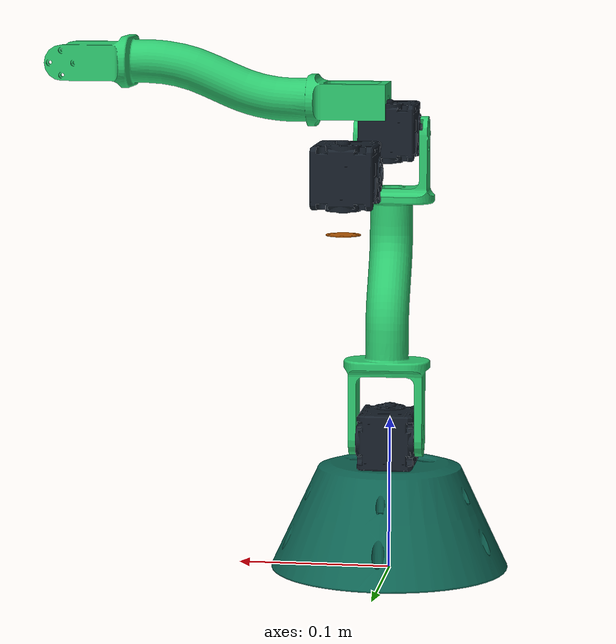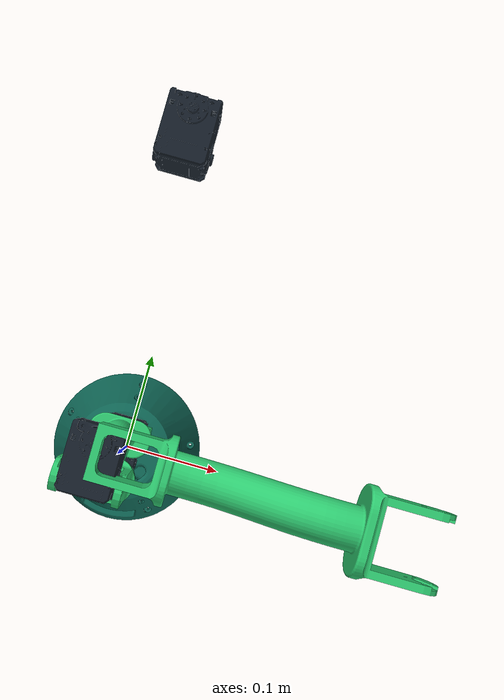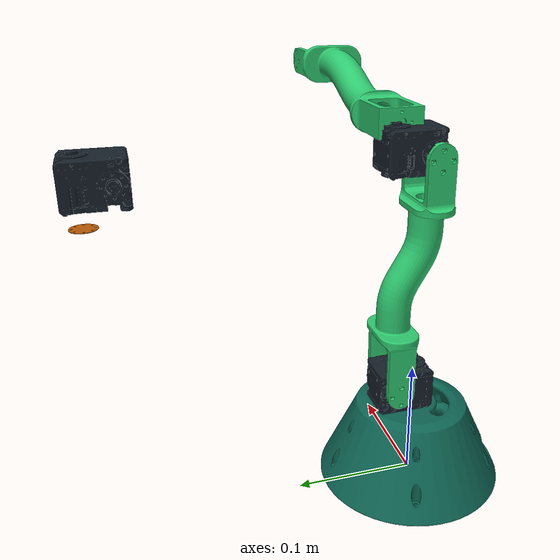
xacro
<?xml version="1.0"?>
<robot xmlns:xacro="http://wiki.ros.org/xacro">

  <!-- Fix robot to Gazebo world -->
    <link name="world" />
    <joint name="world-base_link-fixed" type="fixed">
        <parent link="world" />
        <child link="base_link" />
        <origin rpy="0.0 0.0 0.0" xyz="0.0 0.0 0.0" />
    </joint>

  <link
    name="base_link">
    <inertial>
      <origin
        xyz="5.34102915090199E-06 0.00149611119634719 0.027324411040906"
        rpy="0 0 0" />
      <mass
        value="0.399055600639488" />
      <inertia
        ixx="0.101795155"
        ixy="-0.0000106"
        ixz="-0.000004255"
        iyy="0.1049705"
        iyz="-0.0025166"
        izz="0.113806134" />
    </inertial>
    <visual>
      <origin
        xyz="0 0 0"
        rpy="0 0 0" />
      <geometry>
        <mesh
          filename="package://archie_description/meshes/base_link.STL" />
      </geometry>
      <material
        name="">
        <color
          rgba="0.0549 0.4 0.3333 1.0"/>
      </material>
    </visual>
    <collision>
      <origin
        xyz="0 0 0"
        rpy="0 0 0" />
      <geometry>
        <mesh
          filename="package://archie_description/meshes/base_link.STL" />
      </geometry>
    </collision>
  </link>
  <link
    name="link_1">
    <inertial>
      <origin
        xyz="0.000495971250250975 -0.0119998499605218 0.0192958783777655"
        rpy="0 0 0" />
      <mass
        value="0.102" />
      <inertia
        ixx="0.004708"
        ixy="0.0000362"
        ixz="-0.0000863"
        iyy="0.0034761"
        iyz="-0.0013745"
        izz="0.0024097" />
    </inertial>
    <visual>
      <origin
        xyz="0 0 0"
        rpy="0 0 0" />
      <geometry>
        <mesh
          filename="package://archie_description/meshes/link_1.STL" />
      </geometry>
      <material
        name="">
        <color
          rgba="0.09019 0.12549 0.164706 1.0"/>
      </material>
    </visual>
    <collision>
      <origin
        xyz="0 0 0"
        rpy="0 0 0" />
      <geometry>
        <mesh
          filename="package://archie_description/meshes/link_1.STL" />
      </geometry>
    </collision>
  </link>
  <joint
    name="joint_1"
    type="revolute">
    <origin
      xyz="0 0 0.07"
      rpy="0 0 3.14159265358979" />
    <parent
      link="base_link" />
    <child
      link="link_1" />
    <axis
      xyz="0 0 1" />
    <limit
      lower="-1.57"
      upper="1.57"
      effort="300"
      velocity="3" />
  </joint>
  <link
    name="link_2">
    <inertial>
      <origin
        xyz="-0.00775223885247785 0.0986651693444381 3.09623365033344E-07"
        rpy="0 0 0" />
      <mass
        value="0.102283747087815" />
      <inertia
        ixx="0.125060728"
        ixy="0.017650428"
        ixz="0.000000038"
        iyy="0.0057453"
        iyz="-0.00000199"
        izz="0.1262878" />
    </inertial>
    <visual>
      <origin
        xyz="0 0 0"
        rpy="0 0 0" />
      <geometry>
        <mesh
          filename="package://archie_description/meshes/link_2.STL" />
      </geometry>
      <material
        name="">
        <color
          rgba="0.1804 0.8 0.4431 1.0"/>
      </material>
    </visual>
    <collision>
      <origin
        xyz="0 0 0"
        rpy="0 0 0" />
      <geometry>
        <mesh
          filename="package://archie_description/meshes/link_2.STL" />
      </geometry>
    </collision>
  </link>
  <joint
    name="joint_2"
    type="revolute">
    <origin
      xyz="0 -0.02 0.02"
      rpy="1.5707963267949 0 -1.5707963267949" />
    <parent
      link="link_1" />
    <child
      link="link_2" />
    <axis
      xyz="0 0 1" />
    <limit
      lower="-0.78"
      upper="0.78"
      effort="300"
      velocity="3" />
  </joint>
  <link
    name="link_3">
    <inertial>
      <origin
        xyz="0.0057998503185917 0.000495971402698678 0.000495878377765527"
        rpy="0 0 0" />
      <mass
        value="0.102" />
      <inertia
        ixx="0.004708"
        ixy="0.0000362"
        ixz="-0.0000863"
        iyy="0.0034761"
        iyz="-0.0013745"
        izz="0.0024097" />
    </inertial>
    <visual>
      <origin
        xyz="0 0 0"
        rpy="0 0 0" />
      <geometry>
        <mesh
          filename="package://archie_description/meshes/link_3.STL" />
      </geometry>
      <material
        name="">
        <color
          rgba="0.09019 0.12549 0.164706 1.0"/>
      </material>
    </visual>
    <collision>
      <origin
        xyz="0 0 0"
        rpy="0 0 0" />
      <geometry>
        <mesh
          filename="package://archie_description/meshes/link_3.STL" />
      </geometry>
    </collision>
  </link>
  <joint
    name="joint_3"
    type="revolute">
    <origin
      xyz="-0.02 0.2 0"
      rpy="0 0 1.5707963267949" />
    <parent
      link="link_2" />
    <child
      link="link_3" />
    <axis
      xyz="0 0 1" />
    <limit
      lower="-1.15"
      upper="2"
      effort="300"
      velocity="3" />
  </joint>
  <link
    name="link_4">
    <inertial>
      <origin
        xyz="-0.0140962967782675 4.33165647224752E-07 0.105115025906125"
        rpy="0 0 0" />
      <mass
        value="0.105070462984836" />
      <inertia
        ixx="0.1573144"
        ixy="0.0195671"
        ixz="0.0000000040"
        iyy="0.0051205"
        iyz="0.0000001350"
        izz="0.1589789"/>
    </inertial>
    <visual>
      <origin
        xyz="0 0 0"
        rpy="0 0 0" />
      <geometry>
        <mesh
          filename="package://archie_description/meshes/link_4.STL" />
      </geometry>
      <material
        name="">
        <color
          rgba="0.1804 0.8 0.4431 1.0"/>
      </material>
    </visual>
    <collision>
      <origin
        xyz="0 0 0"
        rpy="0 0 0" />
      <geometry>
        <mesh
          filename="package://archie_description/meshes/link_4.STL" />
      </geometry>
    </collision>
  </link>
  <joint
    name="joint_4"
    type="revolute">
    <origin
      xyz="0.0200000000000001 -0.02 0"
      rpy="1.5707963267949 0 0" />
    <parent
      link="link_3" />
    <child
      link="link_4" />
    <axis
      xyz="0 0 1" />
    <limit
      lower="-3.14"
      upper="3.14"
      effort="200"
      velocity="3" />
  </joint>
  <link
    name="link_5">
    <inertial>
      <origin
        xyz="-0.00570412111171636 -0.00950015024510067 0.000495971250250971"
        rpy="0 0 0" />
      <mass
        value="0.0982" />
      <inertia
        ixx="0.004708"
        ixy="0.0000362"
        ixz="-0.0000863"
        iyy="0.0034761"
        iyz="-0.0013745"
        izz="0.0024097" />
    </inertial>
    <visual>
      <origin
        xyz="0 0 0"
        rpy="0 0 0" />
      <geometry>
        <mesh
          filename="package://archie_description/meshes/link_5.STL" />
      </geometry>
      <material
        name="">
        <color
          rgba="0.09019 0.12549 0.164706 1.0"/>
      </material>
    </visual>
    <collision>
      <origin
        xyz="0 0 0"
        rpy="0 0 0" />
      <geometry>
        <mesh
          filename="package://archie_description/meshes/link_5.STL" />
      </geometry>
    </collision>
  </link>
  <joint
    name="joint_5"
    type="revolute">
    <origin
      xyz="-0.0200000000000001 0 0.21"
      rpy="-1.5707963267949 0 0" />
    <parent
      link="link_4" />
    <child
      link="link_5" />
    <axis
      xyz="0 0 1" />
    <limit
      lower="-1.15"
      upper="2"
      effort="200"
      velocity="3" />
  </joint>
  <link
    name="link_6">
    <inertial>
      <origin
        xyz="0.00150005999207131 2.13388833428252E-08 0.0547308096922248"
        rpy="0 0 0" />
      <mass
        value="0.0340927901942582" />
      <inertia
        ixx="133722.55E-9"
        ixy="0.01E-9"
        ixz="0"
        iyy="133722.55E-9"
        iyz="-0.05E-9"
        izz="1130.56E-9" />
    </inertial>
    <visual>
      <origin
        xyz="0 0 0"
        rpy="0 0 0" />
      <geometry>
        <mesh
          filename="package://archie_description/meshes/link_6.STL" />
      </geometry>
      <material
        name="">
        <color
          rgba="0.729411764705882 0.356862745098039 0.0235294117647059 1" />
      </material>
    </visual>
    <collision>
      <origin
        xyz="0 0 0"
        rpy="0 0 0" />
      <geometry>
        <mesh
          filename="package://archie_description/meshes/link_6.STL" />
      </geometry>
    </collision>
  </link>
  <joint
    name="joint_6"
    type="revolute">
    <origin
      xyz="-0.04 -0.02 0"
      rpy="1.5707963267949 0 -1.5707963267949" />
    <parent
      link="link_5" />
    <child
      link="link_6" />
    <axis
      xyz="0 0 1" />
    <limit
      lower="-3.14"
      upper="3.14"
      effort="200"
      velocity="3" />
  </joint>
   <!-- transmission list -->
  <transmission name="link_1_trans">
    <type>transmission_interface/SimpleTransmission</type>
    <joint name="joint_1">
      <hardwareInterface>hardware_interface/PositionJointInterface</hardwareInterface>
    </joint>
    <actuator name="link_1_motor">
      <hardwareInterface>hardware_interface/PositionJointInterface</hardwareInterface>
      <mechanicalReduction>1</mechanicalReduction>
    </actuator>
  </transmission>
  <transmission name="link_2_trans">
    <type>transmission_interface/SimpleTransmission</type>
    <joint name="joint_2">
      <hardwareInterface>hardware_interface/PositionJointInterface</hardwareInterface>
    </joint>
    <actuator name="link_2_motor">
      <hardwareInterface>hardware_interface/PositionJointInterface</hardwareInterface>
      <mechanicalReduction>1</mechanicalReduction>
    </actuator>
  </transmission>
  <transmission name="link_3_trans">
    <type>transmission_interface/SimpleTransmission</type>
    <joint name="joint_3">
      <hardwareInterface>hardware_interface/PositionJointInterface</hardwareInterface>
    </joint>
    <actuator name="link_3_motor">
      <hardwareInterface>hardware_interface/PositionJointInterface</hardwareInterface>
      <mechanicalReduction>1</mechanicalReduction>
    </actuator>
  </transmission>
  <transmission name="link_4_trans">
    <type>transmission_interface/SimpleTransmission</type>
    <joint name="joint_4">
      <hardwareInterface>hardware_interface/PositionJointInterface</hardwareInterface>
    </joint>
    <actuator name="link_4_motor">
      <hardwareInterface>hardware_interface/PositionJointInterface</hardwareInterface>
      <mechanicalReduction>1</mechanicalReduction>
    </actuator>
  </transmission>
  <transmission name="link_5_trans">
    <type>transmission_interface/SimpleTransmission</type>
    <joint name="joint_5">
      <hardwareInterface>hardware_interface/PositionJointInterface</hardwareInterface>
    </joint>
    <actuator name="link_5_motor">
      <hardwareInterface>hardware_interface/PositionJointInterface</hardwareInterface>
      <mechanicalReduction>1</mechanicalReduction>
    </actuator>
  </transmission>
  <transmission name="link_6_trans">
    <type>transmission_interface/SimpleTransmission</type>
    <joint name="joint_6">
      <hardwareInterface>hardware_interface/PositionJointInterface</hardwareInterface>
    </joint>
    <actuator name="link_6_motor">
      <hardwareInterface>hardware_interface/PositionJointInterface</hardwareInterface>
      <mechanicalReduction>1</mechanicalReduction>
    </actuator>
  </transmission>
  <!-- end of transmission list -->

  <!-- Gazebo-specific link properties -->
  <gazebo reference="link_1">
    <selfCollide>true</selfCollide>
    <material>Gazebo/Black</material>
  </gazebo>
  <gazebo reference="link_2">
    <selfCollide>true</selfCollide>
    <material>Gazebo/Orange</material>
  </gazebo>
  <gazebo reference="link_3">
    <selfCollide>true</selfCollide>
    <material>Gazebo/Black</material>
  </gazebo>
  <gazebo reference="link_4">
    <selfCollide>true</selfCollide>
    <material>Gazebo/Orange</material>
  </gazebo>
  <gazebo reference="link_5">
    <selfCollide>true</selfCollide>
    <material>Gazebo/Black</material>
  </gazebo>
  <gazebo reference="link_6">
    <selfCollide>true</selfCollide>
  </gazebo>
  <!-- ros_control plugin -->
  <gazebo>
    <plugin filename="libgazebo_ros_control.so" name="control">
      <robotNamespace>/</robotNamespace>
      <robotSimType>gazebo_ros_control/DefaultRobotHWSim</robotSimType>
    </plugin>
  </gazebo>
</robot>
